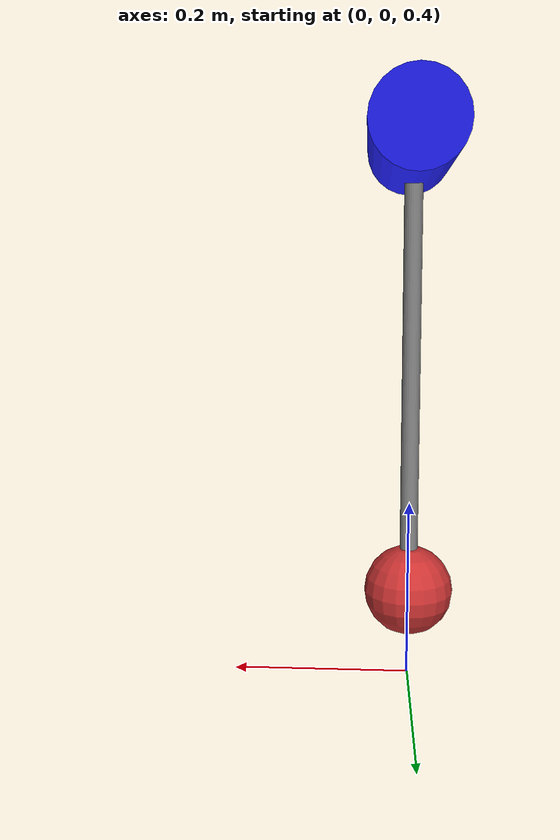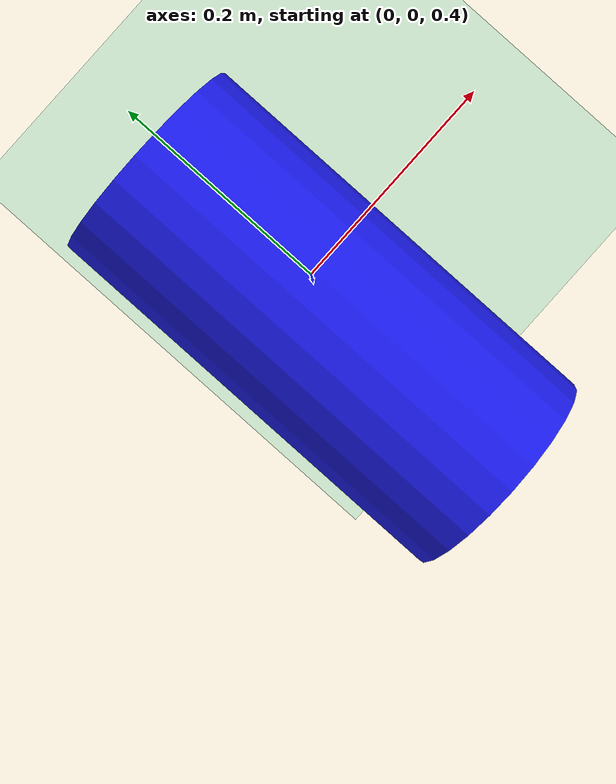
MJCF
<mujoco model="pendulum_phase_space">
    <option timestep="0.005" integrator="RK4" gravity="0 0 -9.81"/>

    <worldbody>
        <light pos="0 -2 3" dir="0 1 -1" directional="true" castshadow="true"/>
        <geom name="floor" type="plane" size="2 2 0.1" rgba="0.8 0.9 0.8 1" contype="1" conaffinity="1"/>
        <camera name="cam_side" pos="0 -3 1.0" quat="0.7071 0.7071 0 0"/>
        <camera name="cam_wide_fixed" pos="0 -2.5 1.4" quat="0.7071 0.7071 0 0" fovy="95"/>

        <body name="pivot" pos="0 0 1.0">
            <geom type="cylinder" size="0.05 0.1" rgba="0.1 0.1 0.9 1" quat="0.7071 0.7071 0 0"/>
            <body name="pendulum_link" pos="0 0 0">
                <joint name="hinge_y" type="hinge" axis="0 1 0" pos="0 0 0" damping="0.1"/>
                <inertial pos="0 0 -0.5" mass="0.15" diaginertia="0.0375 0.0375 0.0375"/>
                <geom type="cylinder" fromto="0 0 0  0 0 -0.5" size="0.01" rgba="0.5 0.5 0.5 1" contype="0" conaffinity="0"/>
                <geom type="sphere" pos="0 0 -0.5" size="0.05" rgba="0.8 0.2 0.2 1"/>
            </body>
        </body>
    </worldbody>

    <actuator>
        <motor name="torque_motor" joint="hinge_y" gear="1" ctrllimited="true" ctrlrange="-1.0 1.0"/>
    </actuator>

    <sensor>
        <jointpos joint="hinge_y" name="sens_theta"/>
        <jointvel joint="hinge_y" name="sens_theta_dot"/>
    </sensor>
</mujoco>
